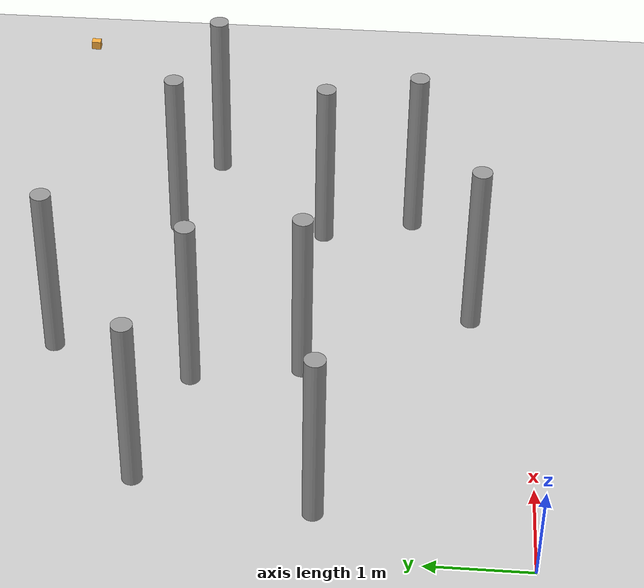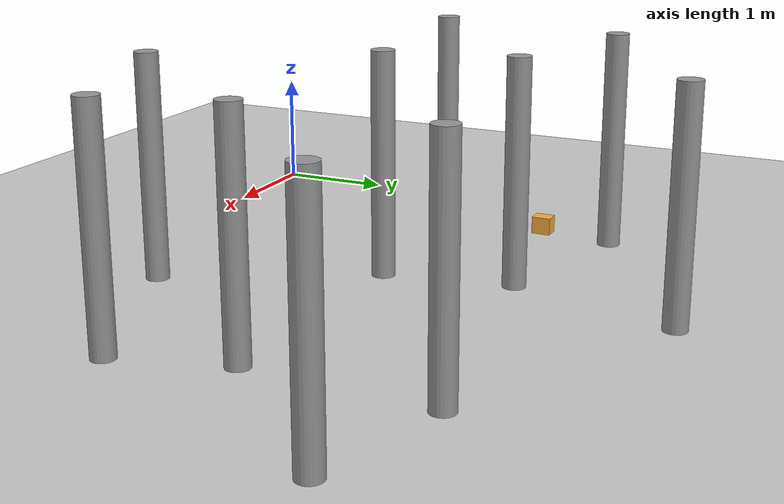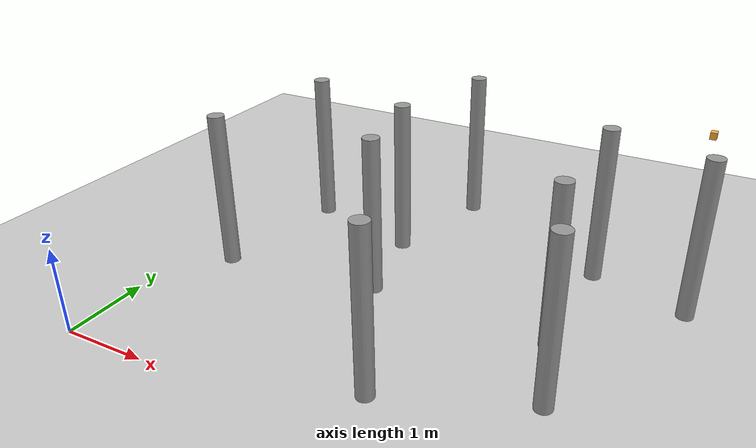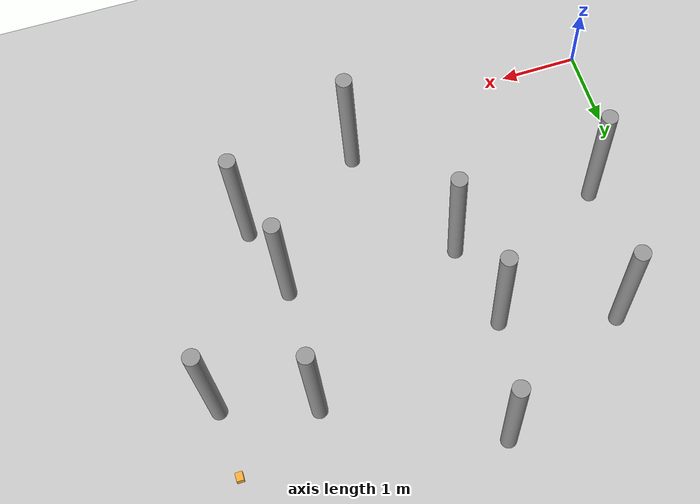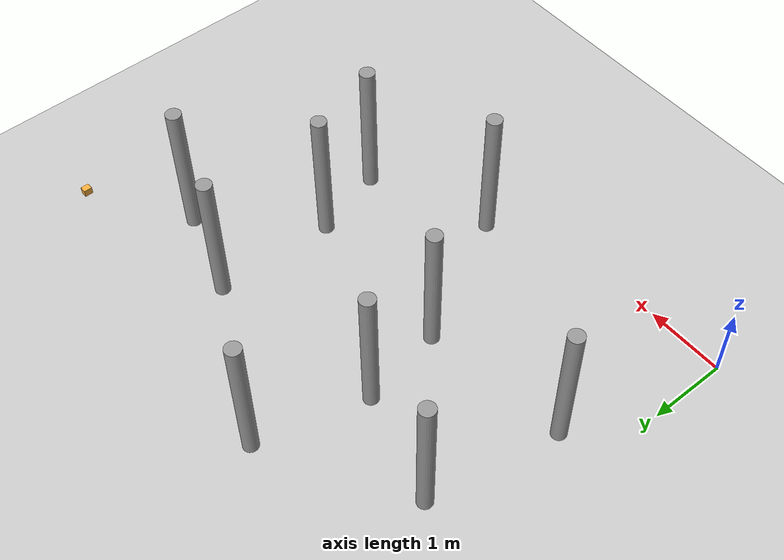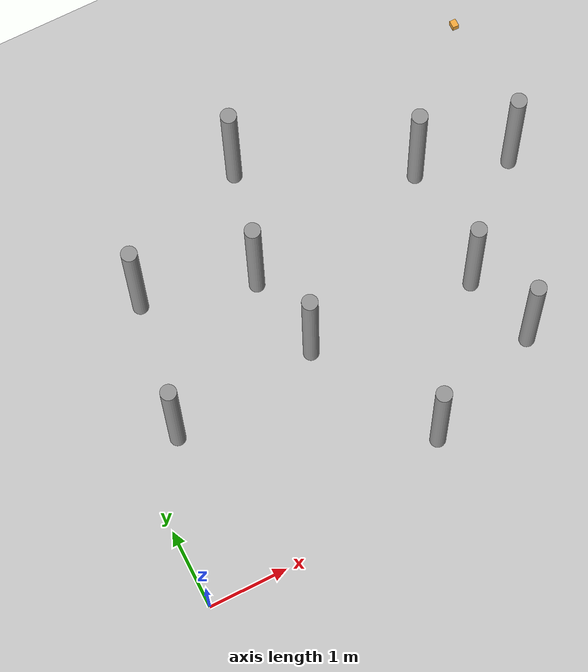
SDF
<sdf version="1.6">
 <world name="default">
  <light name="sun" type="directional">
   <pose>0 0 10 0 -0 0</pose>
   <diffuse>0.8 0.8 0.8 1</diffuse>
   <specular>0.2 0.2 0.2 1</specular>
   <attenuation>
    <range>1000</range>
    <constant>0.9</constant>
    <linear>0.01</linear>
    <quadratic>0.001</quadratic>
   </attenuation>
   <direction>-0.5 0.1 -0.9</direction>
  </light>
  <plugin name="ros_interface_plugin" filename="librotors_gazebo_ros_interface_plugin.so"/>
  <model name="ground_plane">
   <static>1</static>
   <link name="link">
    <collision name="collision">
     <geometry><plane><normal>0 0 1</normal><size>100 100</size></plane></geometry>
     <surface>
      <contact><collide_bitmask>65535</collide_bitmask></contact>
      <friction><ode><mu>100</mu><mu2>50</mu2></ode></friction>
     </surface>
    </collision>
    <visual name="visual">
     <cast_shadows>0</cast_shadows>
     <geometry><plane><normal>0 0 1</normal><size>100 100</size></plane></geometry>
     <material>
      <script><uri>file://media/materials/scripts/gazebo.material</uri><name>Gazebo/Grey</name></script>
     </material>
    </visual>
   </link>
  </model>
  <gravity>0 0 -9.8</gravity>
  <magnetic_field>6e-06 2.3e-05 -4.2e-05</magnetic_field>
  <atmosphere type="adiabatic"/>
  <physics name="default_physics" default="0" type="ode">
   <max_step_size>0.001</max_step_size>
   <real_time_factor>1</real_time_factor>
   <real_time_update_rate>1000</real_time_update_rate>
  </physics>
  <scene><ambient>0.4 0.4 0.4 1</ambient><background>0.7 0.7 0.7 1</background><shadows>1</shadows></scene>
  <spherical_coordinates>
   <surface_model>EARTH_WGS84</surface_model>
   <latitude_deg>0</latitude_deg>
   <longitude_deg>0</longitude_deg>
   <elevation>0</elevation>
   <heading_deg>0</heading_deg>
  </spherical_coordinates>
  <model name="obstacle1">
   <link name="link">
    <inertial>
     <mass>112.569</mass>
     <inertia><ixx>33.2512</ixx><ixy>0</ixy><ixz>0</ixz><iyy>33.2512</iyy><iyz>0</iyz><izz>0.537779</izz></inertia>
    </inertial>
    <visual name="visual">
     <geometry><cylinder><radius>0.097748</radius><length>1.87509</length></cylinder></geometry>
     <material>
      <script><name>Gazebo/Grey</name><uri>file://media/materials/scripts/gazebo.material</uri></script>
      <shader type="pixel"><normal_map>__default__</normal_map></shader>
     </material>
    </visual>
    <collision name="collision">
     <geometry><cylinder><radius>0.097748</radius><length>1.87509</length></cylinder></geometry>
     <surface>
      <friction>
       <ode><mu>1</mu><mu2>1</mu2><fdir1>0 0 0</fdir1><slip1>0</slip1><slip2>0</slip2></ode>
       <torsional>
        <coefficient>1</coefficient>
        <patch_radius>0</patch_radius>
        <surface_radius>0</surface_radius>
        <use_patch_radius>1</use_patch_radius>
        <ode><slip>0</slip></ode>
       </torsional>
      </friction>
      <bounce><restitution_coefficient>0</restitution_coefficient><threshold>1e+06</threshold></bounce>
      <contact>
       <collide_without_contact>0</collide_without_contact>
       <collide_without_contact_bitmask>1</collide_without_contact_bitmask>
       <collide_bitmask>1</collide_bitmask>
       <ode>
        <soft_cfm>0</soft_cfm>
        <soft_erp>0.2</soft_erp>
        <kp>1e+13</kp>
        <kd>1</kd>
        <max_vel>0.01</max_vel>
        <min_depth>0</min_depth>
       </ode>
       <bullet>
        <split_impulse>1</split_impulse>
        <split_impulse_penetration_threshold>-0.01</split_impulse_penetration_threshold>
        <soft_cfm>0</soft_cfm>
        <soft_erp>0.2</soft_erp>
        <kp>1e+13</kp>
        <kd>1</kd>
       </bullet>
      </contact>
     </surface>
    </collision>
   </link>
   <static>0</static>
   <pose>2.43211 2.2353 0.937544 -1e-06 0 -0.000431</pose>
  </model>
  <model name="obstacle2">
   <link name="link">
    <inertial>
     <mass>112.569</mass>
     <inertia><ixx>33.2512</ixx><ixy>0</ixy><ixz>0</ixz><iyy>33.2512</iyy><iyz>0</iyz><izz>0.537779</izz></inertia>
    </inertial>
    <visual name="visual">
     <geometry><cylinder><radius>0.097748</radius><length>1.87509</length></cylinder></geometry>
     <material>
      <script><name>Gazebo/Grey</name><uri>file://media/materials/scripts/gazebo.material</uri></script>
      <shader type="pixel"><normal_map>__default__</normal_map></shader>
     </material>
    </visual>
    <collision name="collision">
     <geometry><cylinder><radius>0.097748</radius><length>1.87509</length></cylinder></geometry>
     <surface>
      <friction>
       <ode><mu>1</mu><mu2>1</mu2><fdir1>0 0 0</fdir1><slip1>0</slip1><slip2>0</slip2></ode>
       <torsional>
        <coefficient>1</coefficient>
        <patch_radius>0</patch_radius>
        <surface_radius>0</surface_radius>
        <use_patch_radius>1</use_patch_radius>
        <ode><slip>0</slip></ode>
       </torsional>
      </friction>
      <bounce><restitution_coefficient>0</restitution_coefficient><threshold>1e+06</threshold></bounce>
      <contact>
       <collide_without_contact>0</collide_without_contact>
       <collide_without_contact_bitmask>1</collide_without_contact_bitmask>
       <collide_bitmask>1</collide_bitmask>
       <ode>
        <soft_cfm>0</soft_cfm>
        <soft_erp>0.2</soft_erp>
        <kp>1e+13</kp>
        <kd>1</kd>
        <max_vel>0.01</max_vel>
        <min_depth>0</min_depth>
       </ode>
       <bullet>
        <split_impulse>1</split_impulse>
        <split_impulse_penetration_threshold>-0.01</split_impulse_penetration_threshold>
        <soft_cfm>0</soft_cfm>
        <soft_erp>0.2</soft_erp>
        <kp>1e+13</kp>
        <kd>1</kd>
       </bullet>
      </contact>
     </surface>
    </collision>
   </link>
   <static>0</static>
   <pose>0.857076 3.68167 0.937536 0 0 -0.000374</pose>
  </model>
  <model name="obstacle3">
   <link name="link">
    <inertial>
     <mass>112.569</mass>
     <inertia><ixx>33.2512</ixx><ixy>0</ixy><ixz>0</ixz><iyy>33.2512</iyy><iyz>0</iyz><izz>0.537779</izz></inertia>
    </inertial>
    <visual name="visual">
     <geometry><cylinder><radius>0.097748</radius><length>1.87509</length></cylinder></geometry>
     <material>
      <script><name>Gazebo/Grey</name><uri>file://media/materials/scripts/gazebo.material</uri></script>
      <shader type="pixel"><normal_map>__default__</normal_map></shader>
     </material>
    </visual>
    <collision name="collision">
     <geometry><cylinder><radius>0.097748</radius><length>1.87509</length></cylinder></geometry>
     <surface>
      <friction>
       <ode><mu>1</mu><mu2>1</mu2><fdir1>0 0 0</fdir1><slip1>0</slip1><slip2>0</slip2></ode>
       <torsional>
        <coefficient>1</coefficient>
        <patch_radius>0</patch_radius>
        <surface_radius>0</surface_radius>
        <use_patch_radius>1</use_patch_radius>
        <ode><slip>0</slip></ode>
       </torsional>
      </friction>
      <bounce><restitution_coefficient>0</restitution_coefficient><threshold>1e+06</threshold></bounce>
      <contact>
       <collide_without_contact>0</collide_without_contact>
       <collide_without_contact_bitmask>1</collide_without_contact_bitmask>
       <collide_bitmask>1</collide_bitmask>
       <ode>
        <soft_cfm>0</soft_cfm>
        <soft_erp>0.2</soft_erp>
        <kp>1e+13</kp>
        <kd>1</kd>
        <max_vel>0.01</max_vel>
        <min_depth>0</min_depth>
       </ode>
       <bullet>
        <split_impulse>1</split_impulse>
        <split_impulse_penetration_threshold>-0.01</split_impulse_penetration_threshold>
        <soft_cfm>0</soft_cfm>
        <soft_erp>0.2</soft_erp>
        <kp>1e+13</kp>
        <kd>1</kd>
       </bullet>
      </contact>
     </surface>
    </collision>
   </link>
   <static>0</static>
   <pose>4.58899 3.69691 0.937544 -1e-06 -0 -0.000414</pose>
  </model>
  <model name="obstacle4">
   <link name="link">
    <inertial>
     <mass>112.569</mass>
     <inertia><ixx>33.2512</ixx><ixy>0</ixy><ixz>0</ixz><iyy>33.2512</iyy><iyz>0</iyz><izz>0.537779</izz></inertia>
    </inertial>
    <visual name="visual">
     <geometry><cylinder><radius>0.097748</radius><length>1.87509</length></cylinder></geometry>
     <material>
      <script><name>Gazebo/Grey</name><uri>file://media/materials/scripts/gazebo.material</uri></script>
      <shader type="pixel"><normal_map>__default__</normal_map></shader>
     </material>
    </visual>
    <collision name="collision">
     <geometry><cylinder><radius>0.097748</radius><length>1.87509</length></cylinder></geometry>
     <surface>
      <friction>
       <ode><mu>1</mu><mu2>1</mu2><fdir1>0 0 0</fdir1><slip1>0</slip1><slip2>0</slip2></ode>
       <torsional>
        <coefficient>1</coefficient>
        <patch_radius>0</patch_radius>
        <surface_radius>0</surface_radius>
        <use_patch_radius>1</use_patch_radius>
        <ode><slip>0</slip></ode>
       </torsional>
      </friction>
      <bounce><restitution_coefficient>0</restitution_coefficient><threshold>1e+06</threshold></bounce>
      <contact>
       <collide_without_contact>0</collide_without_contact>
       <collide_without_contact_bitmask>1</collide_without_contact_bitmask>
       <collide_bitmask>1</collide_bitmask>
       <ode>
        <soft_cfm>0</soft_cfm>
        <soft_erp>0.2</soft_erp>
        <kp>1e+13</kp>
        <kd>1</kd>
        <max_vel>0.01</max_vel>
        <min_depth>0</min_depth>
       </ode>
       <bullet>
        <split_impulse>1</split_impulse>
        <split_impulse_penetration_threshold>-0.01</split_impulse_penetration_threshold>
        <soft_cfm>0</soft_cfm>
        <soft_erp>0.2</soft_erp>
        <kp>1e+13</kp>
        <kd>1</kd>
       </bullet>
      </contact>
     </surface>
    </collision>
   </link>
   <static>0</static>
   <pose>4.54886 2.15152 0.937544 -1e-06 -0 -0.000473</pose>
  </model>
  <model name="obstacle5">
   <link name="link">
    <inertial>
     <mass>112.569</mass>
     <inertia><ixx>33.2512</ixx><ixy>0</ixy><ixz>0</ixz><iyy>33.2512</iyy><iyz>0</iyz><izz>0.537779</izz></inertia>
    </inertial>
    <visual name="visual">
     <geometry><cylinder><radius>0.097748</radius><length>1.87509</length></cylinder></geometry>
     <material>
      <script><name>Gazebo/Grey</name><uri>file://media/materials/scripts/gazebo.material</uri></script>
      <shader type="pixel"><normal_map>__default__</normal_map></shader>
     </material>
    </visual>
    <collision name="collision">
     <geometry><cylinder><radius>0.097748</radius><length>1.87509</length></cylinder></geometry>
     <surface>
      <friction>
       <ode><mu>1</mu><mu2>1</mu2><fdir1>0 0 0</fdir1><slip1>0</slip1><slip2>0</slip2></ode>
       <torsional>
        <coefficient>1</coefficient>
        <patch_radius>0</patch_radius>
        <surface_radius>0</surface_radius>
        <use_patch_radius>1</use_patch_radius>
        <ode><slip>0</slip></ode>
       </torsional>
      </friction>
      <bounce><restitution_coefficient>0</restitution_coefficient><threshold>1e+06</threshold></bounce>
      <contact>
       <collide_without_contact>0</collide_without_contact>
       <collide_without_contact_bitmask>1</collide_without_contact_bitmask>
       <collide_bitmask>1</collide_bitmask>
       <ode>
        <soft_cfm>0</soft_cfm>
        <soft_erp>0.2</soft_erp>
        <kp>1e+13</kp>
        <kd>1</kd>
        <max_vel>0.01</max_vel>
        <min_depth>0</min_depth>
       </ode>
       <bullet>
        <split_impulse>1</split_impulse>
        <split_impulse_penetration_threshold>-0.01</split_impulse_penetration_threshold>
        <soft_cfm>0</soft_cfm>
        <soft_erp>0.2</soft_erp>
        <kp>1e+13</kp>
        <kd>1</kd>
       </bullet>
      </contact>
     </surface>
    </collision>
   </link>
   <static>0</static>
   <pose>2.23484 3.30396 0.937536 0 0 -0.000372</pose>
  </model>
  <model name="obstacle6">
   <link name="link">
    <inertial>
     <mass>112.569</mass>
     <inertia><ixx>33.2512</ixx><ixy>0</ixy><ixz>0</ixz><iyy>33.2512</iyy><iyz>0</iyz><izz>0.537779</izz></inertia>
    </inertial>
    <visual name="visual">
     <geometry><cylinder><radius>0.097748</radius><length>1.87509</length></cylinder></geometry>
     <material>
      <script><name>Gazebo/Grey</name><uri>file://media/materials/scripts/gazebo.material</uri></script>
      <shader type="pixel"><normal_map>__default__</normal_map></shader>
     </material>
    </visual>
    <collision name="collision">
     <geometry><cylinder><radius>0.097748</radius><length>1.87509</length></cylinder></geometry>
     <surface>
      <friction>
       <ode><mu>1</mu><mu2>1</mu2><fdir1>0 0 0</fdir1><slip1>0</slip1><slip2>0</slip2></ode>
       <torsional>
        <coefficient>1</coefficient>
        <patch_radius>0</patch_radius>
        <surface_radius>0</surface_radius>
        <use_patch_radius>1</use_patch_radius>
        <ode><slip>0</slip></ode>
       </torsional>
      </friction>
      <bounce><restitution_coefficient>0</restitution_coefficient><threshold>1e+06</threshold></bounce>
      <contact>
       <collide_without_contact>0</collide_without_contact>
       <collide_without_contact_bitmask>1</collide_without_contact_bitmask>
       <collide_bitmask>1</collide_bitmask>
       <ode>
        <soft_cfm>0</soft_cfm>
        <soft_erp>0.2</soft_erp>
        <kp>1e+13</kp>
        <kd>1</kd>
        <max_vel>0.01</max_vel>
        <min_depth>0</min_depth>
       </ode>
       <bullet>
        <split_impulse>1</split_impulse>
        <split_impulse_penetration_threshold>-0.01</split_impulse_penetration_threshold>
        <soft_cfm>0</soft_cfm>
        <soft_erp>0.2</soft_erp>
        <kp>1e+13</kp>
        <kd>1</kd>
       </bullet>
      </contact>
     </surface>
    </collision>
   </link>
   <static>0</static>
   <pose>3.28797 0.595376 0.937536 0 0 -0.001176</pose>
  </model>
  <model name="obstacle7">
   <link name="link">
    <inertial>
     <mass>112.569</mass>
     <inertia><ixx>33.2512</ixx><ixy>0</ixy><ixz>0</ixz><iyy>33.2512</iyy><iyz>0</iyz><izz>0.537779</izz></inertia>
    </inertial>
    <visual name="visual">
     <geometry><cylinder><radius>0.097748</radius><length>1.87509</length></cylinder></geometry>
     <material>
      <script><name>Gazebo/Grey</name><uri>file://media/materials/scripts/gazebo.material</uri></script>
      <shader type="pixel"><normal_map>__default__</normal_map></shader>
     </material>
    </visual>
    <collision name="collision">
     <geometry><cylinder><radius>0.097748</radius><length>1.87509</length></cylinder></geometry>
     <surface>
      <friction>
       <ode><mu>1</mu><mu2>1</mu2><fdir1>0 0 0</fdir1><slip1>0</slip1><slip2>0</slip2></ode>
       <torsional>
        <coefficient>1</coefficient>
        <patch_radius>0</patch_radius>
        <surface_radius>0</surface_radius>
        <use_patch_radius>1</use_patch_radius>
        <ode><slip>0</slip></ode>
       </torsional>
      </friction>
      <bounce><restitution_coefficient>0</restitution_coefficient><threshold>1e+06</threshold></bounce>
      <contact>
       <collide_without_contact>0</collide_without_contact>
       <collide_without_contact_bitmask>1</collide_without_contact_bitmask>
       <collide_bitmask>1</collide_bitmask>
       <ode>
        <soft_cfm>0</soft_cfm>
        <soft_erp>0.2</soft_erp>
        <kp>1e+13</kp>
        <kd>1</kd>
        <max_vel>0.01</max_vel>
        <min_depth>0</min_depth>
       </ode>
       <bullet>
        <split_impulse>1</split_impulse>
        <split_impulse_penetration_threshold>-0.01</split_impulse_penetration_threshold>
        <soft_cfm>0</soft_cfm>
        <soft_erp>0.2</soft_erp>
        <kp>1e+13</kp>
        <kd>1</kd>
       </bullet>
      </contact>
     </surface>
    </collision>
   </link>
   <static>0</static>
   <pose>2.61144 4.70166 0.937544 -1e-06 -0 -0.00055</pose>
  </model>
  <model name="obstacle8">
   <link name="link">
    <inertial>
     <mass>112.569</mass>
     <inertia><ixx>33.2512</ixx><ixy>0</ixy><ixz>0</ixz><iyy>33.2512</iyy><iyz>0</iyz><izz>0.537779</izz></inertia>
    </inertial>
    <visual name="visual">
     <geometry><cylinder><radius>0.097748</radius><length>1.87509</length></cylinder></geometry>
     <material>
      <script><name>Gazebo/Grey</name><uri>file://media/materials/scripts/gazebo.material</uri></script>
      <shader type="pixel"><normal_map>__default__</normal_map></shader>
     </material>
    </visual>
    <collision name="collision">
     <geometry><cylinder><radius>0.097748</radius><length>1.87509</length></cylinder></geometry>
     <surface>
      <friction>
       <ode><mu>1</mu><mu2>1</mu2><fdir1>0 0 0</fdir1><slip1>0</slip1><slip2>0</slip2></ode>
       <torsional>
        <coefficient>1</coefficient>
        <patch_radius>0</patch_radius>
        <surface_radius>0</surface_radius>
        <use_patch_radius>1</use_patch_radius>
        <ode><slip>0</slip></ode>
       </torsional>
      </friction>
      <bounce><restitution_coefficient>0</restitution_coefficient><threshold>1e+06</threshold></bounce>
      <contact>
       <collide_without_contact>0</collide_without_contact>
       <collide_without_contact_bitmask>1</collide_without_contact_bitmask>
       <collide_bitmask>1</collide_bitmask>
       <ode>
        <soft_cfm>0</soft_cfm>
        <soft_erp>0.2</soft_erp>
        <kp>1e+13</kp>
        <kd>1</kd>
        <max_vel>0.01</max_vel>
        <min_depth>0</min_depth>
       </ode>
       <bullet>
        <split_impulse>1</split_impulse>
        <split_impulse_penetration_threshold>-0.01</split_impulse_penetration_threshold>
        <soft_cfm>0</soft_cfm>
        <soft_erp>0.2</soft_erp>
        <kp>1e+13</kp>
        <kd>1</kd>
       </bullet>
      </contact>
     </surface>
    </collision>
   </link>
   <static>0</static>
   <pose>4.82058 1.22362 0.937544 -1e-06 -0 -0.000576</pose>
  </model>
  <model name="obstacle9">
   <link name="link">
    <inertial>
     <mass>112.569</mass>
     <inertia><ixx>33.2512</ixx><ixy>0</ixy><ixz>0</ixz><iyy>33.2512</iyy><iyz>0</iyz><izz>0.537779</izz></inertia>
    </inertial>
    <visual name="visual">
     <geometry><cylinder><radius>0.097748</radius><length>1.87509</length></cylinder></geometry>
     <material>
      <script><name>Gazebo/Grey</name><uri>file://media/materials/scripts/gazebo.material</uri></script>
      <shader type="pixel"><normal_map>__default__</normal_map></shader>
     </material>
    </visual>
    <collision name="collision">
     <geometry><cylinder><radius>0.097748</radius><length>1.87509</length></cylinder></geometry>
     <surface>
      <friction>
       <ode><mu>1</mu><mu2>1</mu2><fdir1>0 0 0</fdir1><slip1>0</slip1><slip2>0</slip2></ode>
       <torsional>
        <coefficient>1</coefficient>
        <patch_radius>0</patch_radius>
        <surface_radius>0</surface_radius>
        <use_patch_radius>1</use_patch_radius>
        <ode><slip>0</slip></ode>
       </torsional>
      </friction>
      <bounce><restitution_coefficient>0</restitution_coefficient><threshold>1e+06</threshold></bounce>
      <contact>
       <collide_without_contact>0</collide_without_contact>
       <collide_without_contact_bitmask>1</collide_without_contact_bitmask>
       <collide_bitmask>1</collide_bitmask>
       <ode>
        <soft_cfm>0</soft_cfm>
        <soft_erp>0.2</soft_erp>
        <kp>1e+13</kp>
        <kd>1</kd>
        <max_vel>0.01</max_vel>
        <min_depth>0</min_depth>
       </ode>
       <bullet>
        <split_impulse>1</split_impulse>
        <split_impulse_penetration_threshold>-0.01</split_impulse_penetration_threshold>
        <soft_cfm>0</soft_cfm>
        <soft_erp>0.2</soft_erp>
        <kp>1e+13</kp>
        <kd>1</kd>
       </bullet>
      </contact>
     </surface>
    </collision>
   </link>
   <static>0</static>
   <pose>5.70626 3.35343 0.937536 0 0 -0.000661</pose>
  </model>
  <model name="obstacle0">
   <link name="link">
    <inertial>
     <mass>112.569</mass>
     <inertia><ixx>33.2512</ixx><ixy>0</ixy><ixz>0</ixz><iyy>33.2512</iyy><iyz>0</iyz><izz>0.537779</izz></inertia>
    </inertial>
    <visual name="visual">
     <geometry><cylinder><radius>0.097748</radius><length>1.87509</length></cylinder></geometry>
     <material>
      <script><name>Gazebo/Grey</name><uri>file://media/materials/scripts/gazebo.material</uri></script>
      <shader type="pixel"><normal_map>__default__</normal_map></shader>
     </material>
    </visual>
    <collision name="collision">
     <geometry><cylinder><radius>0.097748</radius><length>1.87509</length></cylinder></geometry>
     <surface>
      <friction>
       <ode><mu>1</mu><mu2>1</mu2><fdir1>0 0 0</fdir1><slip1>0</slip1><slip2>0</slip2></ode>
       <torsional>
        <coefficient>1</coefficient>
        <patch_radius>0</patch_radius>
        <surface_radius>0</surface_radius>
        <use_patch_radius>1</use_patch_radius>
        <ode><slip>0</slip></ode>
       </torsional>
      </friction>
      <bounce><restitution_coefficient>0</restitution_coefficient><threshold>1e+06</threshold></bounce>
      <contact>
       <collide_without_contact>0</collide_without_contact>
       <collide_without_contact_bitmask>1</collide_without_contact_bitmask>
       <collide_bitmask>1</collide_bitmask>
       <ode>
        <soft_cfm>0</soft_cfm>
        <soft_erp>0.2</soft_erp>
        <kp>1e+13</kp>
        <kd>1</kd>
        <max_vel>0.01</max_vel>
        <min_depth>0</min_depth>
       </ode>
       <bullet>
        <split_impulse>1</split_impulse>
        <split_impulse_penetration_threshold>-0.01</split_impulse_penetration_threshold>
        <soft_cfm>0</soft_cfm>
        <soft_erp>0.2</soft_erp>
        <kp>1e+13</kp>
        <kd>1</kd>
       </bullet>
      </contact>
     </surface>
    </collision>
   </link>
   <static>0</static>
   <pose>0.547669 1.9976 0.937544 -1e-06 0 -0.000437</pose>
  </model>
  <model name="destination">
   <link name="link">
    <inertial>
     <mass>0.0182097</mass>
     <inertia>
      <ixx>2.41e-05</ixx>
      <ixy>0</ixy>
      <ixz>0</ixz>
      <iyy>1.97e-05</iyy>
      <iyz>0</iyz>
      <izz>2.207e-05</izz>
     </inertia>
    </inertial>
    <gravity>0</gravity>
    <visual name="visual">
     <geometry><box><size>0.076314 0.09337 0.084624</size></box></geometry>
     <material>
      <script><name>Gazebo/Grey</name><uri>file://media/materials/scripts/gazebo.material</uri></script>
      <shader type="pixel"><normal_map>__default__</normal_map></shader>
      <ambient>0.988 0.686 0.243 1</ambient>
      <diffuse>0.988 0.686 0.243 1</diffuse>
      <specular>0.988 0.686 0.243 1</specular>
      <emissive>0.988 0.686 0.243 1</emissive>
     </material>
    </visual>
    <collision name="collision">
     <geometry><box><size>0.076314 0.09337 0.084624</size></box></geometry>
     <surface>
      <friction>
       <ode><mu>1</mu><mu2>1</mu2><fdir1>0 0 0</fdir1><slip1>0</slip1><slip2>0</slip2></ode>
       <torsional>
        <coefficient>1</coefficient>
        <patch_radius>0</patch_radius>
        <surface_radius>0</surface_radius>
        <use_patch_radius>1</use_patch_radius>
        <ode><slip>0</slip></ode>
       </torsional>
      </friction>
      <bounce><restitution_coefficient>0</restitution_coefficient><threshold>1e+06</threshold></bounce>
      <contact>
       <collide_without_contact>0</collide_without_contact>
       <collide_without_contact_bitmask>1</collide_without_contact_bitmask>
       <collide_bitmask>1</collide_bitmask>
       <ode>
        <soft_cfm>0</soft_cfm>
        <soft_erp>0.2</soft_erp>
        <kp>1e+13</kp>
        <kd>1</kd>
        <max_vel>0.01</max_vel>
        <min_depth>0</min_depth>
       </ode>
       <bullet>
        <split_impulse>1</split_impulse>
        <split_impulse_penetration_threshold>-0.01</split_impulse_penetration_threshold>
        <soft_cfm>0</soft_cfm>
        <soft_erp>0.2</soft_erp>
        <kp>1e+13</kp>
        <kd>1</kd>
       </bullet>
      </contact>
     </surface>
    </collision>
   </link>
   <static>0</static>
   <pose>5.54007 4.63947 1.64304 0 -0 0</pose>
  </model>
 </world>
</sdf>
